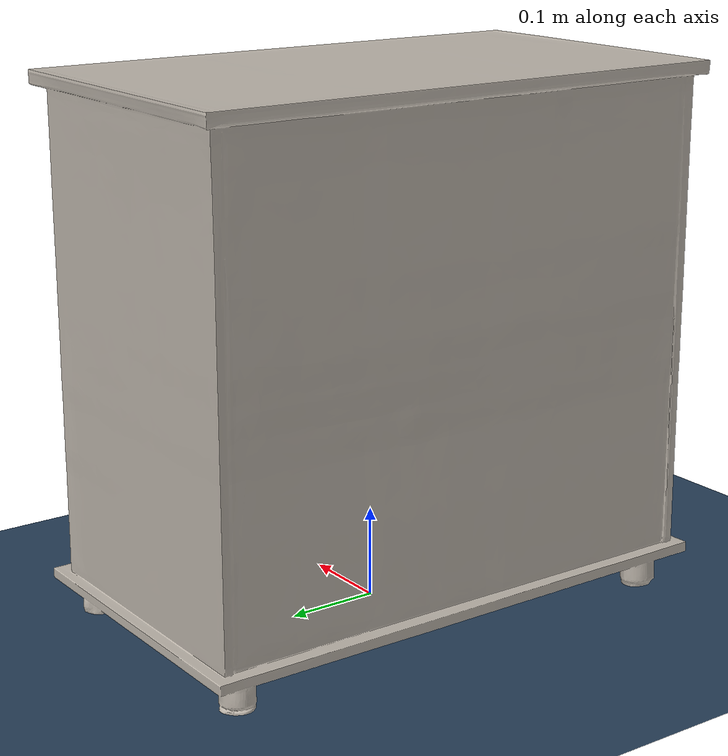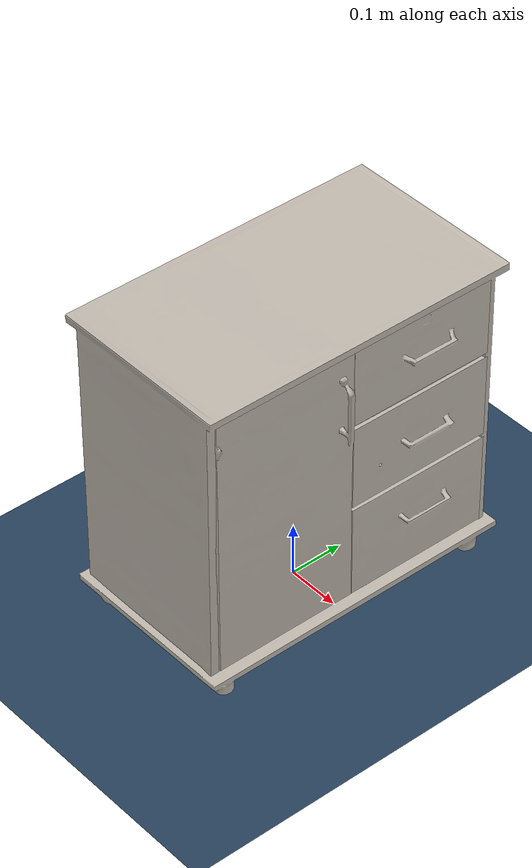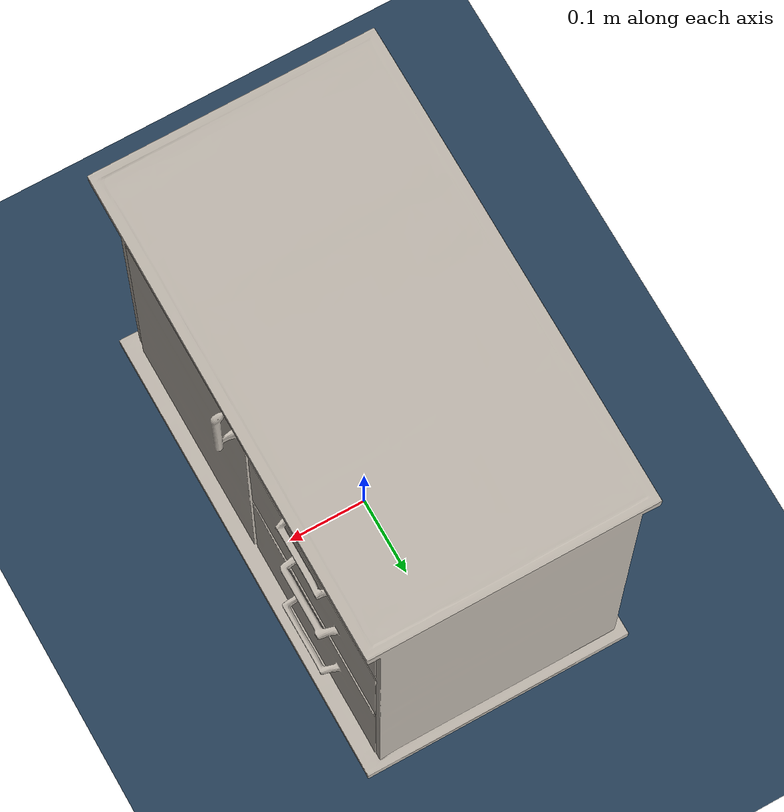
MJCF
<mujoco model="cabinet scene">
  <include file="cabinet.xml" />
  <statistic center="-0.052682102 0 0.30707965" extent="1.2100668" />
  <visual>
    <headlight diffuse="0.6 0.6 0.6" ambient="0.3 0.3 0.3" specular="0 0 0" />
    <rgba haze="0.15 0.25 0.35 1" />
    <global azimuth="140" elevation="-20" />
  </visual>
  <asset>
    <texture type="skybox" builtin="gradient" rgb1="0.3 0.5 0.7" rgb2="0 0 0" width="512" height="3072" />
    <texture type="2d" name="scene_groundplane_texture" builtin="checker" mark="edge" rgb1="0.2 0.3 0.4" rgb2="0.1 0.2 0.3" markrgb="0.8 0.8 0.8" width="300" height="300" />
    <material name="scene_groundplane_material" texture="scene_groundplane_texture" texuniform="true" texrepeat="5 5" reflectance="0.2" />
  </asset>
  <worldbody>
    <light pos="0 0 1.5" dir="0 0 -1" directional="true" />
    <geom name="scene_floor" size="0 0 0.05" type="plane" group="0" material="scene_groundplane_material" />
  </worldbody>
</mujoco>

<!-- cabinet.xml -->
<mujoco model="link_robot">
  <compiler angle="radian" />
  <asset>
    <texture name="dae_texture_004" type="2d" file="cabinet_assets/drawer_3_c92697fb/part_000/material_0.png" />
    <material name="dae_material_004" texture="dae_texture_004" rgba="1 1 1 1" />
    <texture name="dae_texture_003" type="2d" file="cabinet_assets/drawer_2_e1bab951/part_000/material_0.png" />
    <material name="dae_material_003" texture="dae_texture_003" rgba="1 1 1 1" />
    <texture name="dae_texture_002" type="2d" file="cabinet_assets/drawer_1_06b60f4d/part_000/material_0.png" />
    <material name="dae_material_002" texture="dae_texture_002" rgba="1 1 1 1" />
    <texture name="dae_texture_001" type="2d" file="cabinet_assets/door_1_73a3fc2b/part_000/material_0.png" />
    <material name="dae_material_001" texture="dae_texture_001" rgba="1 1 1 1" />
    <texture name="dae_texture_000" type="2d" file="cabinet_assets/base_0_a48c1f86/part_000/material_0.png" />
    <material name="dae_material_000" texture="dae_texture_000" rgba="1 1 1 1" />
    <mesh name="base_0_a48c1f86_part_000" content_type="model/obj" file="cabinet_assets/base_0_a48c1f86/part_000/base_0_a48c1f86_part_000.obj" scale="0.54641 0.599129 0.587747" />
    <mesh name="door_1_73a3fc2b_part_000" content_type="model/obj" file="cabinet_assets/door_1_73a3fc2b/part_000/door_1_73a3fc2b_part_000.obj" scale="0.54641 0.599129 0.587747" />
    <mesh name="drawer_1_06b60f4d_part_000" content_type="model/obj" file="cabinet_assets/drawer_1_06b60f4d/part_000/drawer_1_06b60f4d_part_000.obj" scale="0.54641 0.599129 0.587747" />
    <mesh name="drawer_2_e1bab951_part_000" content_type="model/obj" file="cabinet_assets/drawer_2_e1bab951/part_000/drawer_2_e1bab951_part_000.obj" scale="0.54641 0.599129 0.587747" />
    <mesh name="drawer_3_c92697fb_part_000" content_type="model/obj" file="cabinet_assets/drawer_3_c92697fb/part_000/drawer_3_c92697fb_part_000.obj" scale="0.54641 0.599129 0.587747" />
  </asset>
  <worldbody>
    <body name="converted_root" pos="0 0 0.286">
      <geom name="base_0_visual_000_000" type="mesh" contype="0" conaffinity="0" group="2" density="0" mesh="base_0_a48c1f86_part_000" material="dae_material_000" />
      <geom name="cabinet_back_panel" size="0.008 0.29 0.258" pos="-0.163 0 0.021" type="box" group="3" />
      <geom name="cabinet_left_side_panel" size="0.1565 0.015 0.2585" pos="-0.013 -0.285 0.021" type="box" group="3" />
      <geom name="cabinet_right_side_panel" size="0.1565 0.015 0.2585" pos="-0.013 0.285 0.021" type="box" group="3" />
      <geom name="cabinet_center_panel" size="0.1475 0.017 0.2585" pos="-0.012 0.003 0.023" type="box" group="3" />
      <geom name="cabinet_top_panel" size="0.172 0.3 0.0145" pos="-0.009 0 0.28" type="box" group="3" />
      <geom name="cabinet_bottom_panel" size="0.172 0.3 0.01" pos="-0.009 0 -0.238" type="box" group="3" />
      <geom name="cabinet_upper_drawer_rail" size="0.01 0.13 0.01" pos="0.128 0.145 0.111" type="box" group="3" />
      <geom name="cabinet_lower_drawer_rail" size="0.01 0.13 0.01" pos="0.128 0.145 -0.051" type="box" group="3" />
      <geom name="cabinet_front_left_foot" size="0.02 0.025 0.019" pos="0.135 -0.26 -0.267" type="box" group="3" />
      <geom name="cabinet_front_right_foot" size="0.02 0.025 0.019" pos="0.135 0.26 -0.267" type="box" group="3" />
      <geom name="cabinet_back_left_foot" size="0.02 0.025 0.019" pos="-0.145 -0.26 -0.267" type="box" group="3" />
      <geom name="cabinet_back_right_foot" size="0.02 0.025 0.019" pos="-0.145 0.26 -0.267" type="box" group="3" />
      <body name="door_1" pos="0.119816 -0.275279 0.104384">
        <inertial pos="0.024528 0.136634 -0.085056" mass="1" diaginertia="0.027232 0.021209 0.006424" />
        <joint name="door_joint_1" range="-1.37903 0" actuatorfrcrange="-50 50" />
        <geom name="door_1_visual_000_000" pos="-0.119816 0.275279 -0.104384" quat="1 0 0 0" type="mesh" contype="0" conaffinity="0" group="2" density="0" mesh="door_1_73a3fc2b_part_000" material="dae_material_001" />
        <geom name="door_panel_collision" size="0.007 0.137 0.2515" pos="0.0202 0.1366 -0.085" type="box" group="3" />
        <geom name="door_handle_grip" size="0.0045 0.008 0.055" pos="0.046 0.249724 0.061438" type="box" group="3" />
        <geom name="door_handle_lower_mount" size="0.0115 0.008 0.006" pos="0.0345 0.249724 0.004438" type="box" group="3" />
        <geom name="door_handle_upper_mount" size="0.0115 0.008 0.006" pos="0.0345 0.249724 0.118438" type="box" group="3" />
      </body>
      <body name="drawer_1" pos="0.164706 0.139857 0.193753">
        <inertial pos="-0.152186 -1e-06 1e-06" quat="0 0.707107 0 0.707107" mass="1" diaginertia="0.014248 0.009777 0.008583" />
        <joint name="drawer_joint_1" type="slide" range="-0.22 0" actuatorfrcrange="-50 50" axis="-0.999816 -0.018917 0.003302" />
        <geom name="drawer_1_visual_000_000" type="mesh" contype="0" conaffinity="0" group="2" density="0" mesh="drawer_1_06b60f4d_part_000" material="dae_material_002" />
        <geom name="drawer_1_front_panel" size="0.008 0.14 0.0785" pos="-0.028 0 0" type="box" group="3" />
        <geom name="drawer_1_bottom_panel" size="0.135 0.117 0.003" pos="-0.169 0.009 -0.049" type="box" group="3" />
        <geom name="drawer_1_back_panel" size="0.0035 0.117 0.055" pos="-0.3035 0.009 0.004" type="box" group="3" />
        <geom name="drawer_1_left_panel" size="0.135 0.003 0.055" pos="-0.169 -0.107 0.004" type="box" group="3" />
        <geom name="drawer_1_right_panel" size="0.135 0.003 0.055" pos="-0.169 0.126 0.004" type="box" group="3" />
        <geom name="drawer_1_handle_grip" size="0.004 0.0505 0.0085" pos="-0.003 0.00972 0.004263" type="box" group="3" />
        <geom name="drawer_1_handle_left_mount" size="0.0105 0.007 0.0085" pos="-0.0115 -0.03878 0.004263" type="box" group="3" />
        <geom name="drawer_1_handle_right_mount" size="0.0105 0.007 0.0085" pos="-0.0115 0.05822 0.004263" type="box" group="3" />
      </body>
      <body name="drawer_2" pos="0.165042 0.14016 0.027481">
        <inertial pos="-0.152252 3.7e-05 -1e-05" quat="0 0.707107 0 0.707107" mass="1" diaginertia="0.014295 0.009823 0.008669" />
        <joint name="drawer_joint_2" type="slide" range="-0.22 0" actuatorfrcrange="-50 50" axis="-0.999879 -0.014008 0.006779" />
        <geom name="drawer_2_visual_000_000" type="mesh" contype="0" conaffinity="0" group="2" density="0" mesh="drawer_2_e1bab951_part_000" material="dae_material_003" />
        <geom name="drawer_2_front_panel" size="0.008 0.1405 0.0795" pos="-0.028 0 0" type="box" group="3" />
        <geom name="drawer_2_bottom_panel" size="0.135 0.1165 0.003" pos="-0.169 0.009 -0.057" type="box" group="3" />
        <geom name="drawer_2_back_panel" size="0.0035 0.1165 0.056" pos="-0.304 0.009 -0.002" type="box" group="3" />
        <geom name="drawer_2_left_panel" size="0.135 0.003 0.056" pos="-0.169 -0.107 -0.002" type="box" group="3" />
        <geom name="drawer_2_right_panel" size="0.135 0.003 0.056" pos="-0.169 0.125 -0.002" type="box" group="3" />
        <geom name="drawer_2_handle_grip" size="0.004 0.0475 0.006" pos="-0.003 0.009268 0.002335" type="box" group="3" />
        <geom name="drawer_2_handle_left_mount" size="0.011 0.007 0.006" pos="-0.012 -0.036232 0.002335" type="box" group="3" />
        <geom name="drawer_2_handle_right_mount" size="0.011 0.007 0.006" pos="-0.012 0.054768 0.002335" type="box" group="3" />
      </body>
      <body name="drawer_3" pos="0.163554 0.139967 -0.145939">
        <inertial pos="-0.151711 1e-06 8e-06" quat="0 0.707107 0 0.707107" mass="1" diaginertia="0.014192 0.010249 0.009102" />
        <joint name="drawer_joint_3" type="slide" range="-0.22 0" actuatorfrcrange="-50 50" axis="-0.999955 -0.009328 0.001932" />
        <geom name="drawer_3_visual_000_000" type="mesh" contype="0" conaffinity="0" group="2" density="0" mesh="drawer_3_c92697fb_part_000" material="dae_material_004" />
        <geom name="drawer_3_front_panel" size="0.008 0.14 0.088" pos="-0.027 0 0" type="box" group="3" />
        <geom name="drawer_3_bottom_panel" size="0.1355 0.117 0.003" pos="-0.169 0.009 -0.071" type="box" group="3" />
        <geom name="drawer_3_back_panel" size="0.0035 0.117 0.07" pos="-0.303 0.009 -0.003" type="box" group="3" />
        <geom name="drawer_3_left_panel" size="0.1355 0.003 0.07" pos="-0.169 -0.107 -0.003" type="box" group="3" />
        <geom name="drawer_3_right_panel" size="0.1355 0.003 0.07" pos="-0.169 0.125 -0.003" type="box" group="3" />
        <geom name="drawer_3_handle_grip" size="0.004 0.048 0.0065" pos="-0.003 0.010112 0.018757" type="box" group="3" />
        <geom name="drawer_3_handle_left_mount" size="0.0105 0.007 0.0065" pos="-0.0115 -0.035888 0.018757" type="box" group="3" />
        <geom name="drawer_3_handle_right_mount" size="0.0105 0.007 0.0065" pos="-0.0115 0.056112 0.018757" type="box" group="3" />
      </body>
    </body>
  </worldbody>
  <contact>
    <exclude body1="converted_root" body2="door_1" />
    <exclude body1="converted_root" body2="drawer_1" />
    <exclude body1="converted_root" body2="drawer_2" />
    <exclude body1="converted_root" body2="drawer_3" />
    <exclude body1="door_1" body2="drawer_1" />
    <exclude body1="door_1" body2="drawer_2" />
    <exclude body1="door_1" body2="drawer_3" />
    <exclude body1="drawer_1" body2="drawer_2" />
    <exclude body1="drawer_1" body2="drawer_3" />
    <exclude body1="drawer_2" body2="drawer_3" />
  </contact>
</mujoco>
